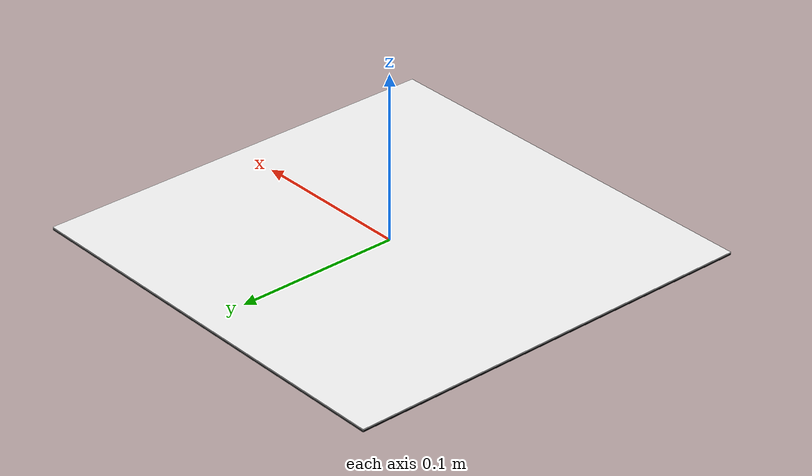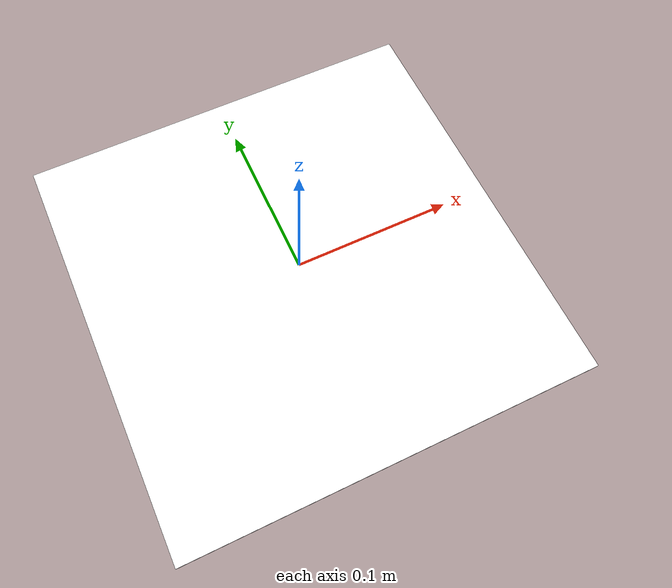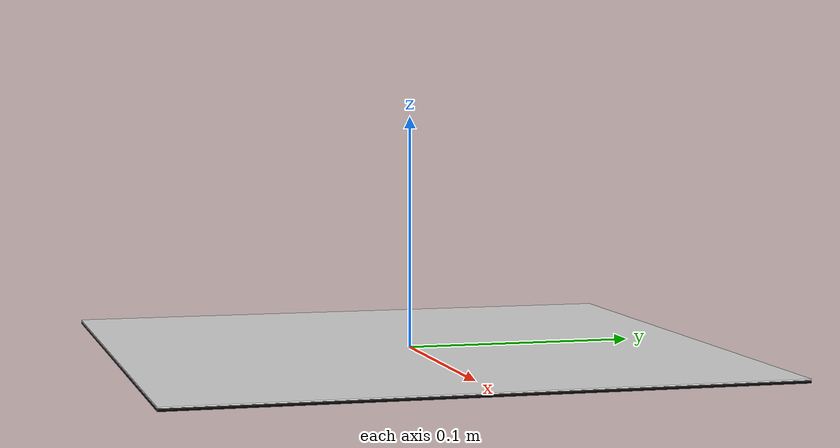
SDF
<?xml version='1.0'?>
<sdf version='1.6'>
    <model name='aruco_6X6_250_1'>
        <link name='tag'>
            <gravity>0</gravity>
            <inertial>
                <mass>0.001</mass>
                <inertia>
                    <ixx>1e-5</ixx><ixy>0</ixy><ixz>0</ixz>
                    <iyy>1e-5</iyy><iyz>0</iyz>
                    <izz>1e-5</izz>
                </inertia>
            </inertial>
            <visual name='front'>
                <pose>0 0 0 0 0 1.57075</pose>
                <geometry>
                    <box>
                        <size>0.2571428571428571 0.2571428571428571 0.0005</size>
                    </box>
                </geometry>
                <material>
                    <ambient>1 1 1 1</ambient>
                    <diffuse>1 1 1 1</diffuse>
                    <specular>0 0 0 1</specular>
                    <pbr>
                        <metal>
                            <albedo_map>model://aruco_6X6_250_1/materials/textures/aruco_6X6_250_1.png</albedo_map>
                            <metalness>0.0</metalness>
                            <roughness>1.0</roughness>
                        </metal>
                    </pbr>
                </material>
            </visual>
            <visual name="back">
                <pose>0 0 -0.001 0 0 1.57075</pose>
                <geometry>
                    <box>
                        <size>0.2571428571428571 0.2571428571428571 0.001</size>
                    </box>
                </geometry>
                <material>
                    <ambient>0 0 0 1</ambient>
                    <diffuse>0 0 0 1</diffuse>
                </material>
            </visual>
        </link>
    </model>
</sdf>
